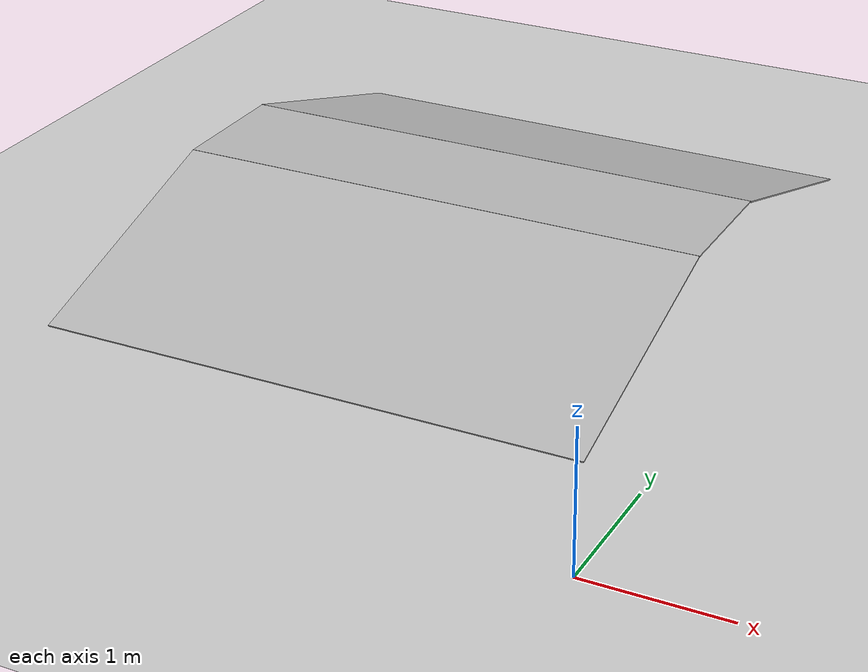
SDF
<sdf version="1.6">
 <world name="default">
  <model name="ground_plane">
   <static>1</static>
   <link name="link">
    <collision name="collision">
     <geometry><plane><normal>0 0 1</normal><size>100 100</size></plane></geometry>
     <surface><friction><ode><mu>0.7</mu><mu2>0.7</mu2></ode></friction></surface>
    </collision>
    <visual name="visual">
     <cast_shadows>0</cast_shadows>
     <geometry><plane><normal>0 0 1</normal><size>100 100</size></plane></geometry>
     <material>
      <script><uri>file://media/materials/scripts/gazebo.material</uri><name>Gazebo/Grey</name></script>
     </material>
    </visual>
   </link>
  </model>
  <include><uri>model://slope</uri><pose>-2.5 7 0 0 0 -1.57</pose></include>
  <light name="sun" type="directional">
   <pose>0 0 10 0 -0 0</pose>
   <diffuse>0.8 0.8 0.8 1</diffuse>
   <specular>0.1 0.1 0.1 1</specular>
   <attenuation>
    <range>1000</range>
    <constant>0.9</constant>
    <linear>0.01</linear>
    <quadratic>0.001</quadratic>
   </attenuation>
   <direction>-0.5 0.5 -1</direction>
  </light>
  <gravity>0 0 -9.81</gravity>
  <magnetic_field>6e-06 2.3e-05 -4.2e-05</magnetic_field>
  <atmosphere type="adiabatic"/>
  <physics name="default_physics" default="0" type="ode">
   <max_step_size>0.001</max_step_size>
   <real_time_factor>1.0</real_time_factor>
   <real_time_update_rate>1000</real_time_update_rate>
  </physics>
  <scene><ambient>0.4 0.4 0.4 1</ambient><background>0.7 0.7 0.7 1</background><shadows>1</shadows></scene>
  <spherical_coordinates>
   <surface_model>EARTH_WGS84</surface_model>
   <latitude_deg>0</latitude_deg>
   <longitude_deg>0</longitude_deg>
   <elevation>0</elevation>
   <heading_deg>0</heading_deg>
  </spherical_coordinates>
 </world>
</sdf>

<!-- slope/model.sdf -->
<sdf version='1.7'>
  <model name='slope'>
    <link name='slope_up'>
      <pose>1.95534 0 0.29552 0 -0.3 0</pose>
      <self_collide>0</self_collide>
      <kinematic>0</kinematic>
      <gravity>1</gravity>
      <enable_wind>0</enable_wind>
      <inertial>
        <inertia>
          <ixx>0</ixx>
          <ixy>0</ixy>
          <ixz>0</ixz>
          <iyy>0</iyy>
          <iyz>0</iyz>
          <izz>0</izz>
        </inertia>
        <mass>0</mass>
        <pose>0 0 0 0 -0 0</pose>
      </inertial>
      <visual name='visual'>
        <geometry>
          <box>
            <size>2 4.08693 0.01</size>
          </box>
        </geometry>
        <material>
          <shader type='pixel'/>
        </material>
        <pose>0 0 0 0 -0 0</pose>
        <transparency>0</transparency>
        <cast_shadows>1</cast_shadows>
      </visual>
      <collision name='collision'>
        <laser_retro>0</laser_retro>
        <max_contacts>10</max_contacts>
        <pose>0 0 0 0 -0 0</pose>
        <geometry>
          <box>
            <size>2 4.08693 0.01</size>
          </box>
        </geometry>
        <surface>
          <friction>
            <ode>
              <mu>1</mu>
              <mu2>1</mu2>
              <fdir1>0 0 0</fdir1>
              <slip1>0</slip1>
              <slip2>0</slip2>
            </ode>
            <torsional>
              <coefficient>1</coefficient>
              <patch_radius>0</patch_radius>
              <surface_radius>0</surface_radius>
              <use_patch_radius>1</use_patch_radius>
              <ode>
                <slip>0</slip>
              </ode>
            </torsional>
          </friction>
          <bounce>
            <restitution_coefficient>0</restitution_coefficient>
            <threshold>1e+06</threshold>
          </bounce>
          <contact>
            <collide_without_contact>0</collide_without_contact>
            <collide_without_contact_bitmask>1</collide_without_contact_bitmask>
            <collide_bitmask>1</collide_bitmask>
            <ode>
              <soft_cfm>0</soft_cfm>
              <soft_erp>0.2</soft_erp>
              <kp>1e+13</kp>
              <kd>1</kd>
              <max_vel>0.01</max_vel>
              <min_depth>0</min_depth>
            </ode>
            <bullet>
              <split_impulse>1</split_impulse>
              <split_impulse_penetration_threshold>-0.01</split_impulse_penetration_threshold>
              <soft_cfm>0</soft_cfm>
              <soft_erp>0.2</soft_erp>
              <kp>1e+13</kp>
              <kd>1</kd>
            </bullet>
          </contact>
        </surface>
      </collision>
    </link>
    <link name='slope_down'>
      <pose>4.86601 0 0.29552 0 0.3 0</pose>
      <self_collide>0</self_collide>
      <kinematic>0</kinematic>
      <gravity>1</gravity>
      <enable_wind>0</enable_wind>
      <inertial>
        <inertia>
          <ixx>0</ixx>
          <ixy>0</ixy>
          <ixz>0</ixz>
          <iyy>0</iyy>
          <iyz>0</iyz>
          <izz>0</izz>
        </inertia>
        <mass>0</mass>
        <pose>0 0 0 0 -0 0</pose>
      </inertial>
      <visual name='visual'>
        <geometry>
          <box>
            <size>2 4.07192 0.01</size>
          </box>
        </geometry>
        <material>
          <shader type='pixel'/>
        </material>
        <pose>0 0 0 0 -0 0</pose>
        <transparency>0</transparency>
        <cast_shadows>1</cast_shadows>
      </visual>
      <collision name='collision'>
        <laser_retro>0</laser_retro>
        <max_contacts>10</max_contacts>
        <pose>0 0 0 0 -0 0</pose>
        <geometry>
          <box>
            <size>2 4.07192 0.01</size>
          </box>
        </geometry>
        <surface>
          <friction>
            <ode>
              <mu>1</mu>
              <mu2>1</mu2>
              <fdir1>0 0 0</fdir1>
              <slip1>0</slip1>
              <slip2>0</slip2>
            </ode>
            <torsional>
              <coefficient>1</coefficient>
              <patch_radius>0</patch_radius>
              <surface_radius>0</surface_radius>
              <use_patch_radius>1</use_patch_radius>
              <ode>
                <slip>0</slip>
              </ode>
            </torsional>
          </friction>
          <bounce>
            <restitution_coefficient>0</restitution_coefficient>
            <threshold>1e+06</threshold>
          </bounce>
          <contact>
            <collide_without_contact>0</collide_without_contact>
            <collide_without_contact_bitmask>1</collide_without_contact_bitmask>
            <collide_bitmask>1</collide_bitmask>
            <ode>
              <soft_cfm>0</soft_cfm>
              <soft_erp>0.2</soft_erp>
              <kp>1e+13</kp>
              <kd>1</kd>
              <max_vel>0.01</max_vel>
              <min_depth>0</min_depth>
            </ode>
            <bullet>
              <split_impulse>1</split_impulse>
              <split_impulse_penetration_threshold>-0.01</split_impulse_penetration_threshold>
              <soft_cfm>0</soft_cfm>
              <soft_erp>0.2</soft_erp>
              <kp>1e+13</kp>
              <kd>1</kd>
            </bullet>
          </contact>
        </surface>
      </collision>
    </link>
    <link name='slope_zero'>
      <pose>3.41067 0 0.59104 0 -0 0</pose>
      <self_collide>0</self_collide>
      <kinematic>0</kinematic>
      <gravity>1</gravity>
      <enable_wind>0</enable_wind>
      <inertial>
        <inertia>
          <ixx>0</ixx>
          <ixy>0</ixy>
          <ixz>0</ixz>
          <iyy>0</iyy>
          <iyz>0</iyz>
          <izz>0</izz>
        </inertia>
        <mass>0</mass>
        <pose>0 0 0 0 -0 0</pose>
      </inertial>
      <visual name='visual'>
        <geometry>
          <box>
            <size>1 4.07319 0.01</size>
          </box>
        </geometry>
        <material>
          <shader type='pixel'/>
        </material>
        <pose>0 0 0 0 -0 0</pose>
        <transparency>0</transparency>
        <cast_shadows>1</cast_shadows>
      </visual>
      <collision name='collision'>
        <laser_retro>0</laser_retro>
        <max_contacts>10</max_contacts>
        <pose>0 0 0 0 -0 0</pose>
        <geometry>
          <box>
            <size>1 4.07319 0.01</size>
          </box>
        </geometry>
        <surface>
          <friction>
            <ode>
              <mu>1</mu>
              <mu2>1</mu2>
              <fdir1>0 0 0</fdir1>
              <slip1>0</slip1>
              <slip2>0</slip2>
            </ode>
            <torsional>
              <coefficient>1</coefficient>
              <patch_radius>0</patch_radius>
              <surface_radius>0</surface_radius>
              <use_patch_radius>1</use_patch_radius>
              <ode>
                <slip>0</slip>
              </ode>
            </torsional>
          </friction>
          <bounce>
            <restitution_coefficient>0</restitution_coefficient>
            <threshold>1e+06</threshold>
          </bounce>
          <contact>
            <collide_without_contact>0</collide_without_contact>
            <collide_without_contact_bitmask>1</collide_without_contact_bitmask>
            <collide_bitmask>1</collide_bitmask>
            <ode>
              <soft_cfm>0</soft_cfm>
              <soft_erp>0.2</soft_erp>
              <kp>1e+13</kp>
              <kd>1</kd>
              <max_vel>0.01</max_vel>
              <min_depth>0</min_depth>
            </ode>
            <bullet>
              <split_impulse>1</split_impulse>
              <split_impulse_penetration_threshold>-0.01</split_impulse_penetration_threshold>
              <soft_cfm>0</soft_cfm>
              <soft_erp>0.2</soft_erp>
              <kp>1e+13</kp>
              <kd>1</kd>
            </bullet>
          </contact>
        </surface>
      </collision>
    </link>
    <static>1</static>
    <allow_auto_disable>1</allow_auto_disable>
  </model>
</sdf>
